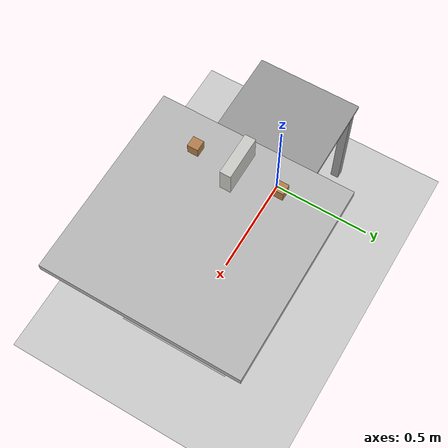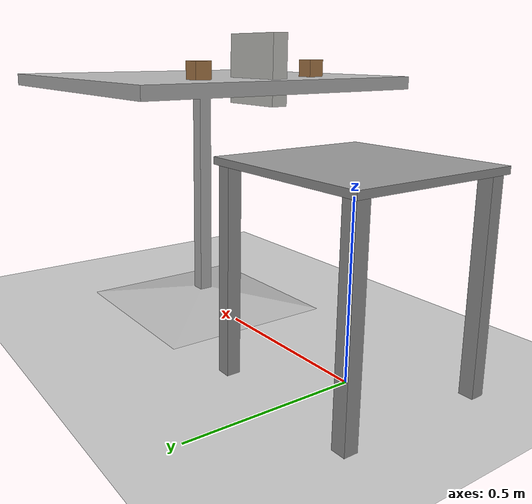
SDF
<?xml version="1.0" ?>

<sdf version="1.6">

  <world name="ur5_cubes">

    <gui>
      <camera name="user_camera">
        <pose>2.0 0.0 1.5 0.0 0.39 3.14</pose>
      </camera>
    </gui>

    <gravity>0 0 -9.81</gravity>

    <physics name="default_physics" default="0" type="ode">
      <max_step_size>0.001</max_step_size>
      <real_time_factor>1</real_time_factor>
      <real_time_update_rate>1000</real_time_update_rate>
    </physics>

    <scene>
      <ambient>0.4 0.4 0.4 1</ambient>
      <background>0.7 0.7 0.7 1</background>
      <shadows>1</shadows>
    </scene>

    <!-- Light Source -->
    <include>
      <uri>model://sun</uri>
    </include>

    <!-- A ground plane -->
    <include>
      <uri>model://ground_plane</uri>
      <pose>0 0 0 0 0 0</pose>
    </include>

    <!-- A gazebo links attacher -->

    <!-- The robot base -->
    <model name="ur5_base">
      <include>
        <uri>model://ur5_base</uri>
        <pose>0 0 0 0 0 0</pose>
      </include>
    </model>

    <!-- Table -->
    <!-- Table top is at (x,y,z) = (0.7, 0, 0.775) -->
    <!-- Table top size is 0.9x0.9 -->
    <model name="cafe_table">
      <static>true</static>
      <include>
        <uri>model://cafe_table</uri>
        <pose>0.7 0 0 0 0 0</pose>
      </include>
    </model>

    <!-- Cubes -->
    <model name="cube1">
      <pose>0.4 -0.2 0.775 0 0 0</pose>
      <link name="link">
        <pose>0 0 0.025 0 0 0</pose>
        <inertial>
          <mass>0.0565</mass>
          <inertia>
            <ixx>2.3541666666666672e-05</ixx>
            <ixy>0</ixy>
            <ixz>0</ixz>
            <iyy>2.3541666666666672e-05</iyy>
            <iyz>0</iyz>
            <izz>2.3541666666666672e-05</izz>
          </inertia>
        </inertial>
        <collision name="collision">
          <geometry>
            <box>
              <size>0.05 0.05 0.05</size>
            </box>
          </geometry>
          <surface>
            <contact>
              <poissons_ratio>0.347</poissons_ratio>
              <elastic_modulus>8.8e+09</elastic_modulus>
              <ode>
                <kp>100000</kp>
                <kd>1</kd>
                <max_vel>1.0</max_vel>
                <min_depth>0.001</min_depth>
              </ode>
            </contact>
            <friction>
              <torsional>
                <coefficient>1.0</coefficient>
                <use_patch_radius>0</use_patch_radius>
                <surface_radius>0.05</surface_radius>
              </torsional>
            </friction>
          </surface>
        </collision>
        <visual name="visual">
          <geometry>
            <box>
              <size>0.05 0.05 0.05</size>
            </box>
          </geometry>
          <material>
            <script>
              <uri>file://media/materials/scripts/gazebo.material</uri>
              <name>Gazebo/Wood</name>
            </script>
          </material>
        </visual>
      </link>
    </model>

    <model name="cube2">
      <pose>0.4 0 0.775 0 0 0</pose>
      <link name="link">
        <pose>0 0 0.025 0 0 0</pose>
        <inertial>
          <mass>0.0565</mass>
          <inertia>
            <ixx>2.3541666666666672e-05</ixx>
            <ixy>0</ixy>
            <ixz>0</ixz>
            <iyy>2.3541666666666672e-05</iyy>
            <iyz>0</iyz>
            <izz>2.3541666666666672e-05</izz>
          </inertia>
        </inertial>
        <collision name="collision">
          <geometry>
            <box>
              <size>0.20 0.05 0.20</size>
            </box>
          </geometry>
          <surface>
            <contact>
              <poissons_ratio>0.347</poissons_ratio>
              <elastic_modulus>8.8e+09</elastic_modulus>
              <ode>
                <kp>100000</kp>
                <kd>1</kd>
                <max_vel>1.0</max_vel>
                <min_depth>0.001</min_depth>
              </ode>
            </contact>
            <friction>
              <torsional>
                <coefficient>1.0</coefficient>
                <use_patch_radius>0</use_patch_radius>
                <surface_radius>0.05</surface_radius>
              </torsional>
            </friction>
          </surface>
        </collision>
        <visual name="visual">
          <geometry>
            <box>
              <size>0.20 0.05 0.20</size>
            </box>
          </geometry>
          <material>
            <script>
              <uri>file://media/materials/scripts/gazebo.material</uri>
              <name>Gazebo/CeilingTiled</name>
            </script>
          </material>
        </visual>
      </link>
    </model>

    <model name="cube3">
      <pose>0.4 0.2 0.775 0 0 0</pose>
      <link name="link">
        <pose>0 0 0.025 0 0 0</pose>
        <inertial>
          <mass>0.0565</mass>
          <inertia>
            <ixx>2.3541666666666672e-05</ixx>
            <ixy>0</ixy>
            <ixz>0</ixz>
            <iyy>2.3541666666666672e-05</iyy>
            <iyz>0</iyz>
            <izz>2.3541666666666672e-05</izz>
          </inertia>
        </inertial>
        <collision name="collision">
          <geometry>
            <box>
              <size>0.05 0.05 0.05</size>
            </box>
          </geometry>
          <surface>
            <contact>
              <poissons_ratio>0.347</poissons_ratio>
              <elastic_modulus>8.8e+09</elastic_modulus>
              <ode>
                <kp>100000</kp>
                <kd>1</kd>
                <max_vel>1.0</max_vel>
                <min_depth>0.001</min_depth>
              </ode>
            </contact>
            <friction>
              <torsional>
                <coefficient>1.0</coefficient>
                <use_patch_radius>0</use_patch_radius>
                <surface_radius>0.05</surface_radius>
              </torsional>
            </friction>
          </surface>
        </collision>
        <visual name="visual">
          <geometry>
            <box>
              <size>0.05 0.05 0.05</size>
            </box>
          </geometry>
          <material>
            <script>
              <uri>file://media/materials/scripts/gazebo.material</uri>
              <name>Gazebo/WoodPallet</name>
            </script>
          </material>
        </visual>
      </link>
    </model>

  </world>

</sdf>

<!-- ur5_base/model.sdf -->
<sdf version="1.6">
  <model name="ur5_base">
    <static>true</static>

    <link name="top_plate">
      <pose>0 0 0.58 0 0 0</pose>
      <collision name="top_plate_collision">
        <geometry>
          <box>
            <size>0.5 0.5 0.02</size>
          </box>
        </geometry>
        <surface>
          <contact>
            <collide_bitmask>0x01</collide_bitmask>
          </contact>
        </surface>
      </collision>
      <visual name="top_plate_visual">
        <geometry>
          <box>
            <size>0.5 0.5 0.02</size>
          </box>
        </geometry>
        <material>
          <script>
            <uri>file://media/materials/scripts/gazebo.material</uri>
            <name>Gazebo/Grey</name>
          </script>
        </material>
      </visual>
    </link>
    <link name="leg1">
      <pose>0.22 0.22 0.285 0 0 0</pose>
      <collision name="leg1_collision">
        <geometry>
          <box>
            <size>0.04 0.04 0.57</size>
          </box>
        </geometry>
      </collision>
      <visual name="leg1_visual">
        <geometry>
          <box>
            <size>0.04 0.04 0.57</size>
          </box>
        </geometry>
        <material>
          <script>
            <uri>file://media/materials/scripts/gazebo.material</uri>
            <name>Gazebo/Grey</name>
          </script>
        </material>
      </visual>
    </link>
    <link name="leg2">
      <pose>-0.22 0.22 0.285 0 0 0</pose>
      <collision name="leg2_collision">
        <geometry>
          <box>
            <size>0.04 0.04 0.57</size>
          </box>
        </geometry>
      </collision>
      <visual name="leg2_visual">
        <geometry>
          <box>
            <size>0.04 0.04 0.57</size>
          </box>
        </geometry>
        <material>
          <script>
            <uri>file://media/materials/scripts/gazebo.material</uri>
            <name>Gazebo/Grey</name>
          </script>
        </material>
      </visual>
    </link>
    <link name="leg3">
      <pose>0.22 -0.22 0.285 0 0 0</pose>
      <collision name="leg3_collision">
        <geometry>
          <box>
            <size>0.04 0.04 0.57</size>
          </box>
        </geometry>
      </collision>
      <visual name="leg3_visual">
        <geometry>
          <box>
            <size>0.04 0.04 0.57</size>
          </box>
        </geometry>
        <material>
          <script>
            <uri>file://media/materials/scripts/gazebo.material</uri>
            <name>Gazebo/Grey</name>
          </script>
        </material>
      </visual>
    </link>
    <link name="leg4">
      <pose>-0.22 -0.22 0.285 0 0 0</pose>
      <collision name="leg4_collision">
        <geometry>
          <box>
            <size>0.04 0.04 0.57</size>
          </box>
        </geometry>
      </collision>
      <visual name="leg4_visual">
        <geometry>
          <box>
            <size>0.04 0.04 0.57</size>
          </box>
        </geometry>
        <material>
          <script>
            <uri>file://media/materials/scripts/gazebo.material</uri>
            <name>Gazebo/Grey</name>
          </script>
        </material>
      </visual>
    </link>
  </model>
</sdf>

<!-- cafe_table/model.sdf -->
<sdf version="1.5">
  <model name="cafe_table">
    <static>true</static>
    <link name="link">
      <collision name="surface">
        <pose>0 0 0.755 0 0 0</pose>
        <geometry>
          <box>
            <size>0.913 0.913 0.04</size>
          </box>
        </geometry>
      </collision>

      <collision name="column">
        <pose>0 0 0.37 0 0 0</pose>
        <geometry>
          <box>
            <size>0.042 0.042 0.74</size>
          </box>
        </geometry>
      </collision>

      <collision name="base">
        <pose>0 0 0.02 0 0 0</pose>
        <geometry>
          <box>
            <size>0.56 0.56 0.04</size>
          </box>
        </geometry>
      </collision>

      <visual name="visual">
        <geometry>
          <mesh>
            <uri>model://../model_source/models/cafe_table/meshes/cafe_table.dae</uri>
          </mesh>
        </geometry>
      </visual>
    </link>
  </model>
</sdf>
